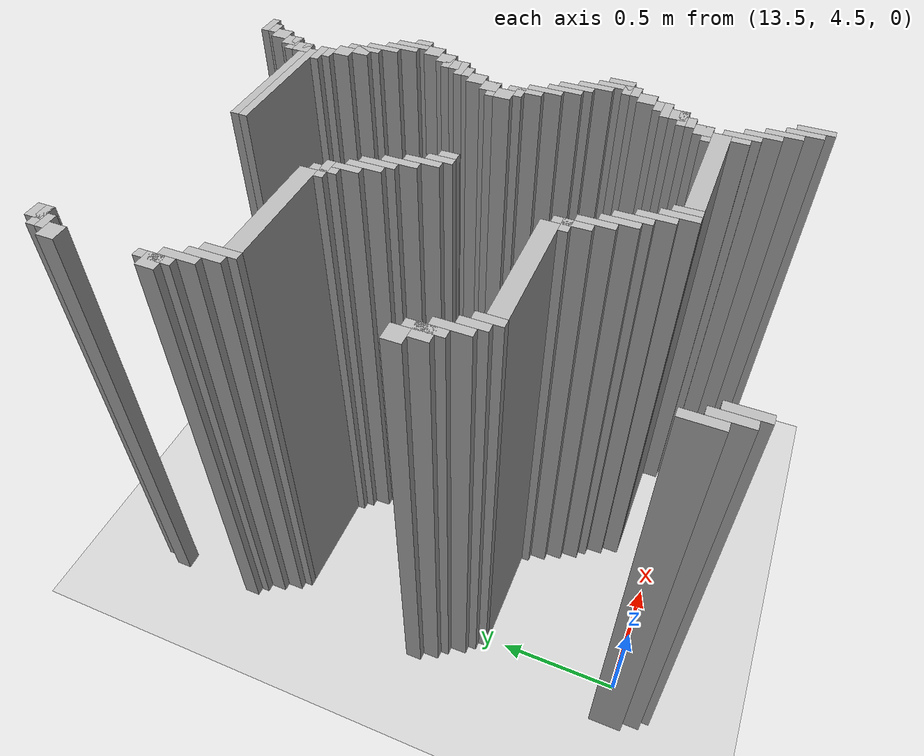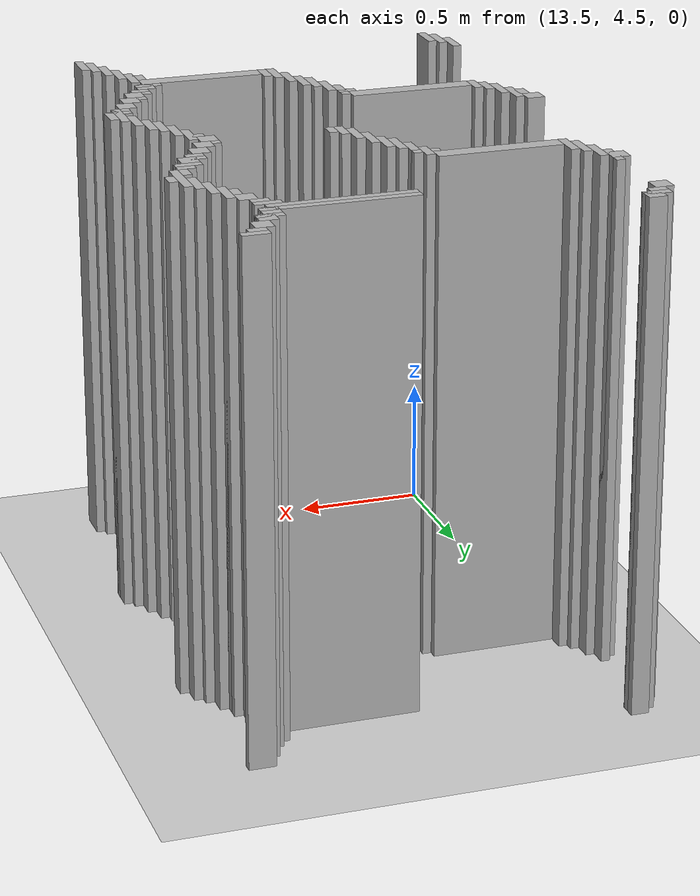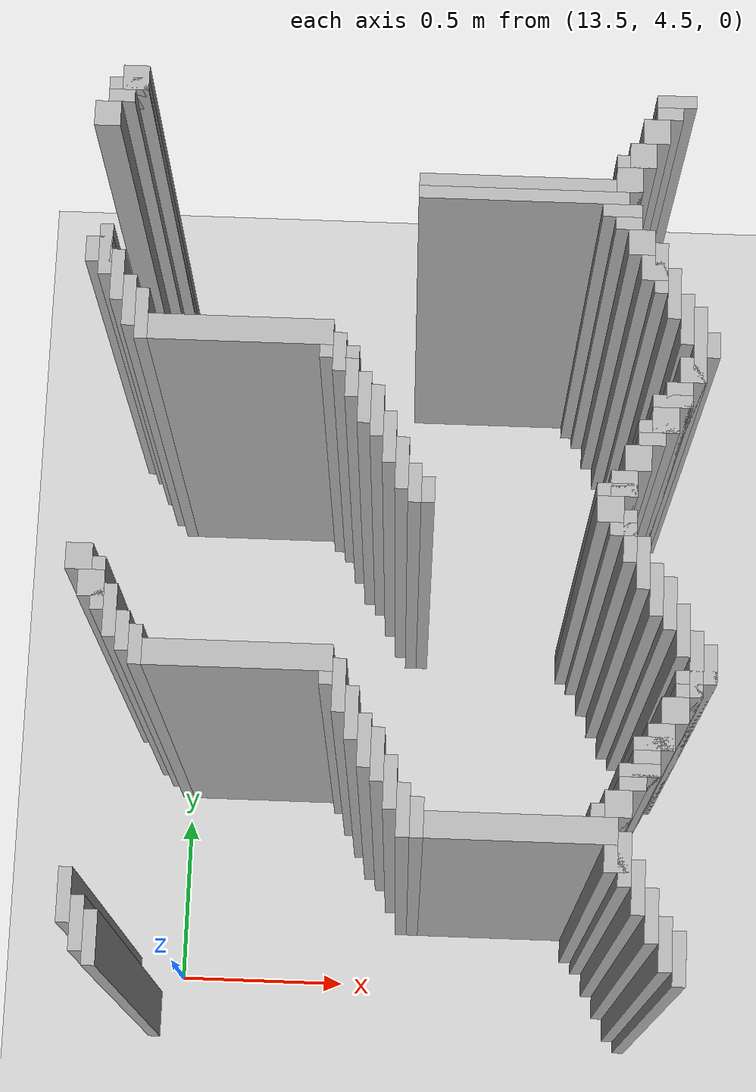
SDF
<sdf version="1.6">
 <world name="slam_world">
  <model name="ground_plane">
   <static>true</static>
   <link name="link">
    <collision name="collision">
     <geometry><plane><normal>0 0 1</normal><size>100 100</size></plane></geometry>
    </collision>
    <visual name="visual">
     <geometry><plane><normal>0 0 1</normal><size>100 100</size></plane></geometry>
     <material>
      <ambient>0.8 0.8 0.8 1</ambient>
      <diffuse>0.8 0.8 0.8 1</diffuse>
      <specular>0.8 0.8 0.8 1</specular>
     </material>
    </visual>
   </link>
  </model>
  <model name="wall_3590">
   <static>true</static>
   <pose>13.39907192575406 6.682134570765661 1.0 0 0 0</pose>
   <link name="link">
    <collision name="collision">
     <geometry><box><size>0.06960556844547564 0.06960556844547564 2.0</size></box></geometry>
    </collision>
    <visual name="visual">
     <geometry><box><size>0.06960556844547564 0.06960556844547564 2.0</size></box></geometry>
     <material><ambient>0.5 0.5 0.5 1</ambient><diffuse>0.7 0.7 0.7 1</diffuse></material>
    </visual>
   </link>
  </model>
  <model name="wall_3603">
   <static>true</static>
   <pose>13.38167053364269 6.664733178654292 1.0 0 0 0</pose>
   <link name="link">
    <collision name="collision">
     <geometry><box><size>0.10440835266821345 0.03480278422273782 2.0</size></box></geometry>
    </collision>
    <visual name="visual">
     <geometry><box><size>0.10440835266821345 0.03480278422273782 2.0</size></box></geometry>
     <material><ambient>0.5 0.5 0.5 1</ambient><diffuse>0.7 0.7 0.7 1</diffuse></material>
    </visual>
   </link>
  </model>
  <model name="wall_3604">
   <static>true</static>
   <pose>14.84338747099768 6.664733178654292 1.0 0 0 0</pose>
   <link name="link">
    <collision name="collision">
     <geometry><box><size>0.10440835266821345 0.03480278422273782 2.0</size></box></geometry>
    </collision>
    <visual name="visual">
     <geometry><box><size>0.10440835266821345 0.03480278422273782 2.0</size></box></geometry>
     <material><ambient>0.5 0.5 0.5 1</ambient><diffuse>0.7 0.7 0.7 1</diffuse></material>
    </visual>
   </link>
  </model>
  <model name="wall_3610">
   <static>true</static>
   <pose>13.364269141531322 6.629930394431554 1.0 0 0 0</pose>
   <link name="link">
    <collision name="collision">
     <geometry><box><size>0.06960556844547564 0.03480278422273782 2.0</size></box></geometry>
    </collision>
    <visual name="visual">
     <geometry><box><size>0.06960556844547564 0.03480278422273782 2.0</size></box></geometry>
     <material><ambient>0.5 0.5 0.5 1</ambient><diffuse>0.7 0.7 0.7 1</diffuse></material>
    </visual>
   </link>
  </model>
  <model name="wall_3611">
   <static>true</static>
   <pose>14.825986078886311 6.629930394431554 1.0 0 0 0</pose>
   <link name="link">
    <collision name="collision">
     <geometry><box><size>0.06960556844547564 0.03480278422273782 2.0</size></box></geometry>
    </collision>
    <visual name="visual">
     <geometry><box><size>0.06960556844547564 0.03480278422273782 2.0</size></box></geometry>
     <material><ambient>0.5 0.5 0.5 1</ambient><diffuse>0.7 0.7 0.7 1</diffuse></material>
    </visual>
   </link>
  </model>
  <model name="wall_3623">
   <static>true</static>
   <pose>13.329466357308585 6.577726218097448 1.0 0 0 0</pose>
   <link name="link">
    <collision name="collision">
     <geometry><box><size>0.06960556844547564 0.06960556844547564 2.0</size></box></geometry>
    </collision>
    <visual name="visual">
     <geometry><box><size>0.06960556844547564 0.06960556844547564 2.0</size></box></geometry>
     <material><ambient>0.5 0.5 0.5 1</ambient><diffuse>0.7 0.7 0.7 1</diffuse></material>
    </visual>
   </link>
  </model>
  <model name="wall_3624">
   <static>true</static>
   <pose>14.791183294663572 6.577726218097448 1.0 0 0 0</pose>
   <link name="link">
    <collision name="collision">
     <geometry><box><size>0.06960556844547564 0.06960556844547564 2.0</size></box></geometry>
    </collision>
    <visual name="visual">
     <geometry><box><size>0.06960556844547564 0.06960556844547564 2.0</size></box></geometry>
     <material><ambient>0.5 0.5 0.5 1</ambient><diffuse>0.7 0.7 0.7 1</diffuse></material>
    </visual>
   </link>
  </model>
  <model name="wall_3637">
   <static>true</static>
   <pose>14.756380510440835 6.508120649651972 1.0 0 0 0</pose>
   <link name="link">
    <collision name="collision">
     <geometry><box><size>0.06960556844547564 0.06960556844547564 2.0</size></box></geometry>
    </collision>
    <visual name="visual">
     <geometry><box><size>0.06960556844547564 0.06960556844547564 2.0</size></box></geometry>
     <material><ambient>0.5 0.5 0.5 1</ambient><diffuse>0.7 0.7 0.7 1</diffuse></material>
    </visual>
   </link>
  </model>
  <model name="wall_3650">
   <static>true</static>
   <pose>14.738979118329466 6.490719257540603 1.0 0 0 0</pose>
   <link name="link">
    <collision name="collision">
     <geometry><box><size>0.10440835266821345 0.03480278422273782 2.0</size></box></geometry>
    </collision>
    <visual name="visual">
     <geometry><box><size>0.10440835266821345 0.03480278422273782 2.0</size></box></geometry>
     <material><ambient>0.5 0.5 0.5 1</ambient><diffuse>0.7 0.7 0.7 1</diffuse></material>
    </visual>
   </link>
  </model>
  <model name="wall_3657">
   <static>true</static>
   <pose>14.721577726218097 6.438515081206496 1.0 0 0 0</pose>
   <link name="link">
    <collision name="collision">
     <geometry><box><size>0.06960556844547564 0.06960556844547564 2.0</size></box></geometry>
    </collision>
    <visual name="visual">
     <geometry><box><size>0.06960556844547564 0.06960556844547564 2.0</size></box></geometry>
     <material><ambient>0.5 0.5 0.5 1</ambient><diffuse>0.7 0.7 0.7 1</diffuse></material>
    </visual>
   </link>
  </model>
  <model name="wall_3670">
   <static>true</static>
   <pose>14.460556844547563 6.421113689095128 1.0 0 0 0</pose>
   <link name="link">
    <collision name="collision">
     <geometry><box><size>0.5916473317865429 0.03480278422273782 2.0</size></box></geometry>
    </collision>
    <visual name="visual">
     <geometry><box><size>0.5916473317865429 0.03480278422273782 2.0</size></box></geometry>
     <material><ambient>0.5 0.5 0.5 1</ambient><diffuse>0.7 0.7 0.7 1</diffuse></material>
    </visual>
   </link>
  </model>
  <model name="wall_3677">
   <static>true</static>
   <pose>14.443155452436194 6.386310904872389 1.0 0 0 0</pose>
   <link name="link">
    <collision name="collision">
     <geometry><box><size>0.5568445475638051 0.03480278422273782 2.0</size></box></geometry>
    </collision>
    <visual name="visual">
     <geometry><box><size>0.5568445475638051 0.03480278422273782 2.0</size></box></geometry>
     <material><ambient>0.5 0.5 0.5 1</ambient><diffuse>0.7 0.7 0.7 1</diffuse></material>
    </visual>
   </link>
  </model>
  <model name="wall_3690">
   <static>true</static>
   <pose>14.704176334106728 6.351508120649652 1.0 0 0 0</pose>
   <link name="link">
    <collision name="collision">
     <geometry><box><size>0.10440835266821345 0.03480278422273782 2.0</size></box></geometry>
    </collision>
    <visual name="visual">
     <geometry><box><size>0.10440835266821345 0.03480278422273782 2.0</size></box></geometry>
     <material><ambient>0.5 0.5 0.5 1</ambient><diffuse>0.7 0.7 0.7 1</diffuse></material>
    </visual>
   </link>
  </model>
  <model name="wall_3700">
   <static>true</static>
   <pose>14.721577726218097 6.316705336426914 1.0 0 0 0</pose>
   <link name="link">
    <collision name="collision">
     <geometry><box><size>0.06960556844547564 0.03480278422273782 2.0</size></box></geometry>
    </collision>
    <visual name="visual">
     <geometry><box><size>0.06960556844547564 0.03480278422273782 2.0</size></box></geometry>
     <material><ambient>0.5 0.5 0.5 1</ambient><diffuse>0.7 0.7 0.7 1</diffuse></material>
    </visual>
   </link>
  </model>
  <model name="wall_3713">
   <static>true</static>
   <pose>14.756380510440835 6.2645011600928076 1.0 0 0 0</pose>
   <link name="link">
    <collision name="collision">
     <geometry><box><size>0.06960556844547564 0.06960556844547564 2.0</size></box></geometry>
    </collision>
    <visual name="visual">
     <geometry><box><size>0.06960556844547564 0.06960556844547564 2.0</size></box></geometry>
     <material><ambient>0.5 0.5 0.5 1</ambient><diffuse>0.7 0.7 0.7 1</diffuse></material>
    </visual>
   </link>
  </model>
  <model name="wall_3725">
   <static>true</static>
   <pose>13.346867749419953 6.194895591647332 1.0 0 0 0</pose>
   <link name="link">
    <collision name="collision">
     <geometry><box><size>0.03480278422273782 0.13921113689095127 2.0</size></box></geometry>
    </collision>
    <visual name="visual">
     <geometry><box><size>0.03480278422273782 0.13921113689095127 2.0</size></box></geometry>
     <material><ambient>0.5 0.5 0.5 1</ambient><diffuse>0.7 0.7 0.7 1</diffuse></material>
    </visual>
   </link>
  </model>
  <model name="wall_3726">
   <static>true</static>
   <pose>14.80858468677494 6.194895591647332 1.0 0 0 0</pose>
   <link name="link">
    <collision name="collision">
     <geometry><box><size>0.03480278422273782 0.13921113689095127 2.0</size></box></geometry>
    </collision>
    <visual name="visual">
     <geometry><box><size>0.03480278422273782 0.13921113689095127 2.0</size></box></geometry>
     <material><ambient>0.5 0.5 0.5 1</ambient><diffuse>0.7 0.7 0.7 1</diffuse></material>
    </visual>
   </link>
  </model>
  <model name="wall_3738">
   <static>true</static>
   <pose>13.329466357308585 6.194895591647332 1.0 0 0 0</pose>
   <link name="link">
    <collision name="collision">
     <geometry><box><size>0.06960556844547564 0.06960556844547564 2.0</size></box></geometry>
    </collision>
    <visual name="visual">
     <geometry><box><size>0.06960556844547564 0.06960556844547564 2.0</size></box></geometry>
     <material><ambient>0.5 0.5 0.5 1</ambient><diffuse>0.7 0.7 0.7 1</diffuse></material>
    </visual>
   </link>
  </model>
  <model name="wall_3739">
   <static>true</static>
   <pose>14.791183294663572 6.194895591647332 1.0 0 0 0</pose>
   <link name="link">
    <collision name="collision">
     <geometry><box><size>0.06960556844547564 0.06960556844547564 2.0</size></box></geometry>
    </collision>
    <visual name="visual">
     <geometry><box><size>0.06960556844547564 0.06960556844547564 2.0</size></box></geometry>
     <material><ambient>0.5 0.5 0.5 1</ambient><diffuse>0.7 0.7 0.7 1</diffuse></material>
    </visual>
   </link>
  </model>
  <model name="wall_3751">
   <static>true</static>
   <pose>13.38167053364269 6.125290023201856 1.0 0 0 0</pose>
   <link name="link">
    <collision name="collision">
     <geometry><box><size>0.03480278422273782 0.13921113689095127 2.0</size></box></geometry>
    </collision>
    <visual name="visual">
     <geometry><box><size>0.03480278422273782 0.13921113689095127 2.0</size></box></geometry>
     <material><ambient>0.5 0.5 0.5 1</ambient><diffuse>0.7 0.7 0.7 1</diffuse></material>
    </visual>
   </link>
  </model>
  <model name="wall_3752">
   <static>true</static>
   <pose>14.84338747099768 6.125290023201856 1.0 0 0 0</pose>
   <link name="link">
    <collision name="collision">
     <geometry><box><size>0.03480278422273782 0.13921113689095127 2.0</size></box></geometry>
    </collision>
    <visual name="visual">
     <geometry><box><size>0.03480278422273782 0.13921113689095127 2.0</size></box></geometry>
     <material><ambient>0.5 0.5 0.5 1</ambient><diffuse>0.7 0.7 0.7 1</diffuse></material>
    </visual>
   </link>
  </model>
  <model name="wall_3768">
   <static>true</static>
   <pose>13.416473317865428 6.05568445475638 1.0 0 0 0</pose>
   <link name="link">
    <collision name="collision">
     <geometry><box><size>0.03480278422273782 0.13921113689095127 2.0</size></box></geometry>
    </collision>
    <visual name="visual">
     <geometry><box><size>0.03480278422273782 0.13921113689095127 2.0</size></box></geometry>
     <material><ambient>0.5 0.5 0.5 1</ambient><diffuse>0.7 0.7 0.7 1</diffuse></material>
    </visual>
   </link>
  </model>
  <model name="wall_3769">
   <static>true</static>
   <pose>14.878190255220417 6.05568445475638 1.0 0 0 0</pose>
   <link name="link">
    <collision name="collision">
     <geometry><box><size>0.03480278422273782 0.13921113689095127 2.0</size></box></geometry>
    </collision>
    <visual name="visual">
     <geometry><box><size>0.03480278422273782 0.13921113689095127 2.0</size></box></geometry>
     <material><ambient>0.5 0.5 0.5 1</ambient><diffuse>0.7 0.7 0.7 1</diffuse></material>
    </visual>
   </link>
  </model>
  <model name="wall_3781">
   <static>true</static>
   <pose>13.451276102088167 6.020881670533642 1.0 0 0 0</pose>
   <link name="link">
    <collision name="collision">
     <geometry><box><size>0.03480278422273782 0.13921113689095127 2.0</size></box></geometry>
    </collision>
    <visual name="visual">
     <geometry><box><size>0.03480278422273782 0.13921113689095127 2.0</size></box></geometry>
     <material><ambient>0.5 0.5 0.5 1</ambient><diffuse>0.7 0.7 0.7 1</diffuse></material>
    </visual>
   </link>
  </model>
  <model name="wall_3782">
   <static>true</static>
   <pose>14.912993039443155 5.986078886310905 1.0 0 0 0</pose>
   <link name="link">
    <collision name="collision">
     <geometry><box><size>0.03480278422273782 0.2088167053364269 2.0</size></box></geometry>
    </collision>
    <visual name="visual">
     <geometry><box><size>0.03480278422273782 0.2088167053364269 2.0</size></box></geometry>
     <material><ambient>0.5 0.5 0.5 1</ambient><diffuse>0.7 0.7 0.7 1</diffuse></material>
    </visual>
   </link>
  </model>
  <model name="wall_3797">
   <static>true</static>
   <pose>13.7122969837587 5.986078886310905 1.0 0 0 0</pose>
   <link name="link">
    <collision name="collision">
     <geometry><box><size>0.4872389791183295 0.06960556844547564 2.0</size></box></geometry>
    </collision>
    <visual name="visual">
     <geometry><box><size>0.4872389791183295 0.06960556844547564 2.0</size></box></geometry>
     <material><ambient>0.5 0.5 0.5 1</ambient><diffuse>0.7 0.7 0.7 1</diffuse></material>
    </visual>
   </link>
  </model>
  <model name="wall_3798">
   <static>true</static>
   <pose>14.947795823665892 5.986078886310905 1.0 0 0 0</pose>
   <link name="link">
    <collision name="collision">
     <geometry><box><size>0.03480278422273782 0.06960556844547564 2.0</size></box></geometry>
    </collision>
    <visual name="visual">
     <geometry><box><size>0.03480278422273782 0.06960556844547564 2.0</size></box></geometry>
     <material><ambient>0.5 0.5 0.5 1</ambient><diffuse>0.7 0.7 0.7 1</diffuse></material>
    </visual>
   </link>
  </model>
  <model name="wall_3808">
   <static>true</static>
   <pose>13.973317865429234 5.933874709976798 1.0 0 0 0</pose>
   <link name="link">
    <collision name="collision">
     <geometry><box><size>0.03480278422273782 0.10440835266821345 2.0</size></box></geometry>
    </collision>
    <visual name="visual">
     <geometry><box><size>0.03480278422273782 0.10440835266821345 2.0</size></box></geometry>
     <material><ambient>0.5 0.5 0.5 1</ambient><diffuse>0.7 0.7 0.7 1</diffuse></material>
    </visual>
   </link>
  </model>
  <model name="wall_3823">
   <static>true</static>
   <pose>13.973317865429234 5.933874709976798 1.0 0 0 0</pose>
   <link name="link">
    <collision name="collision">
     <geometry><box><size>0.10440835266821345 0.03480278422273782 2.0</size></box></geometry>
    </collision>
    <visual name="visual">
     <geometry><box><size>0.10440835266821345 0.03480278422273782 2.0</size></box></geometry>
     <material><ambient>0.5 0.5 0.5 1</ambient><diffuse>0.7 0.7 0.7 1</diffuse></material>
    </visual>
   </link>
  </model>
  <model name="wall_3824">
   <static>true</static>
   <pose>14.895591647331786 5.916473317865429 1.0 0 0 0</pose>
   <link name="link">
    <collision name="collision">
     <geometry><box><size>0.06960556844547564 0.06960556844547564 2.0</size></box></geometry>
    </collision>
    <visual name="visual">
     <geometry><box><size>0.06960556844547564 0.06960556844547564 2.0</size></box></geometry>
     <material><ambient>0.5 0.5 0.5 1</ambient><diffuse>0.7 0.7 0.7 1</diffuse></material>
    </visual>
   </link>
  </model>
  <model name="wall_3837">
   <static>true</static>
   <pose>14.008120649651971 5.864269141531322 1.0 0 0 0</pose>
   <link name="link">
    <collision name="collision">
     <geometry><box><size>0.03480278422273782 0.10440835266821345 2.0</size></box></geometry>
    </collision>
    <visual name="visual">
     <geometry><box><size>0.03480278422273782 0.10440835266821345 2.0</size></box></geometry>
     <material><ambient>0.5 0.5 0.5 1</ambient><diffuse>0.7 0.7 0.7 1</diffuse></material>
    </visual>
   </link>
  </model>
  <model name="wall_3852">
   <static>true</static>
   <pose>14.042923433874709 5.812064965197216 1.0 0 0 0</pose>
   <link name="link">
    <collision name="collision">
     <geometry><box><size>0.03480278422273782 0.13921113689095127 2.0</size></box></geometry>
    </collision>
    <visual name="visual">
     <geometry><box><size>0.03480278422273782 0.13921113689095127 2.0</size></box></geometry>
     <material><ambient>0.5 0.5 0.5 1</ambient><diffuse>0.7 0.7 0.7 1</diffuse></material>
    </visual>
   </link>
  </model>
  <model name="wall_3853">
   <static>true</static>
   <pose>14.860788863109049 5.846867749419953 1.0 0 0 0</pose>
   <link name="link">
    <collision name="collision">
     <geometry><box><size>0.06960556844547564 0.06960556844547564 2.0</size></box></geometry>
    </collision>
    <visual name="visual">
     <geometry><box><size>0.06960556844547564 0.06960556844547564 2.0</size></box></geometry>
     <material><ambient>0.5 0.5 0.5 1</ambient><diffuse>0.7 0.7 0.7 1</diffuse></material>
    </visual>
   </link>
  </model>
  <model name="wall_3868">
   <static>true</static>
   <pose>14.077726218097448 5.7772621809744775 1.0 0 0 0</pose>
   <link name="link">
    <collision name="collision">
     <geometry><box><size>0.03480278422273782 0.13921113689095127 2.0</size></box></geometry>
    </collision>
    <visual name="visual">
     <geometry><box><size>0.03480278422273782 0.13921113689095127 2.0</size></box></geometry>
     <material><ambient>0.5 0.5 0.5 1</ambient><diffuse>0.7 0.7 0.7 1</diffuse></material>
    </visual>
   </link>
  </model>
  <model name="wall_3869">
   <static>true</static>
   <pose>14.84338747099768 5.8294663573085845 1.0 0 0 0</pose>
   <link name="link">
    <collision name="collision">
     <geometry><box><size>0.10440835266821345 0.03480278422273782 2.0</size></box></geometry>
    </collision>
    <visual name="visual">
     <geometry><box><size>0.10440835266821345 0.03480278422273782 2.0</size></box></geometry>
     <material><ambient>0.5 0.5 0.5 1</ambient><diffuse>0.7 0.7 0.7 1</diffuse></material>
    </visual>
   </link>
  </model>
  <model name="wall_3882">
   <static>true</static>
   <pose>14.825986078886311 5.7772621809744775 1.0 0 0 0</pose>
   <link name="link">
    <collision name="collision">
     <geometry><box><size>0.06960556844547564 0.06960556844547564 2.0</size></box></geometry>
    </collision>
    <visual name="visual">
     <geometry><box><size>0.06960556844547564 0.06960556844547564 2.0</size></box></geometry>
     <material><ambient>0.5 0.5 0.5 1</ambient><diffuse>0.7 0.7 0.7 1</diffuse></material>
    </visual>
   </link>
  </model>
  <model name="wall_3897">
   <static>true</static>
   <pose>14.112529002320185 5.707656612529002 1.0 0 0 0</pose>
   <link name="link">
    <collision name="collision">
     <geometry><box><size>0.03480278422273782 0.13921113689095127 2.0</size></box></geometry>
    </collision>
    <visual name="visual">
     <geometry><box><size>0.03480278422273782 0.13921113689095127 2.0</size></box></geometry>
     <material><ambient>0.5 0.5 0.5 1</ambient><diffuse>0.7 0.7 0.7 1</diffuse></material>
    </visual>
   </link>
  </model>
  <model name="wall_3898">
   <static>true</static>
   <pose>14.80858468677494 5.759860788863109 1.0 0 0 0</pose>
   <link name="link">
    <collision name="collision">
     <geometry><box><size>0.10440835266821345 0.03480278422273782 2.0</size></box></geometry>
    </collision>
    <visual name="visual">
     <geometry><box><size>0.10440835266821345 0.03480278422273782 2.0</size></box></geometry>
     <material><ambient>0.5 0.5 0.5 1</ambient><diffuse>0.7 0.7 0.7 1</diffuse></material>
    </visual>
   </link>
  </model>
  <model name="wall_3906">
   <static>true</static>
   <pose>14.791183294663572 5.725058004640371 1.0 0 0 0</pose>
   <link name="link">
    <collision name="collision">
     <geometry><box><size>0.06960556844547564 0.03480278422273782 2.0</size></box></geometry>
    </collision>
    <visual name="visual">
     <geometry><box><size>0.06960556844547564 0.03480278422273782 2.0</size></box></geometry>
     <material><ambient>0.5 0.5 0.5 1</ambient><diffuse>0.7 0.7 0.7 1</diffuse></material>
    </visual>
   </link>
  </model>
  <model name="wall_3921">
   <static>true</static>
   <pose>14.147331786542923 5.638051044083526 1.0 0 0 0</pose>
   <link name="link">
    <collision name="collision">
     <geometry><box><size>0.03480278422273782 0.13921113689095127 2.0</size></box></geometry>
    </collision>
    <visual name="visual">
     <geometry><box><size>0.03480278422273782 0.13921113689095127 2.0</size></box></geometry>
     <material><ambient>0.5 0.5 0.5 1</ambient><diffuse>0.7 0.7 0.7 1</diffuse></material>
    </visual>
   </link>
  </model>
  <model name="wall_3922">
   <static>true</static>
   <pose>14.756380510440835 5.672853828306264 1.0 0 0 0</pose>
   <link name="link">
    <collision name="collision">
     <geometry><box><size>0.06960556844547564 0.06960556844547564 2.0</size></box></geometry>
    </collision>
    <visual name="visual">
     <geometry><box><size>0.06960556844547564 0.06960556844547564 2.0</size></box></geometry>
     <material><ambient>0.5 0.5 0.5 1</ambient><diffuse>0.7 0.7 0.7 1</diffuse></material>
    </visual>
   </link>
  </model>
  <model name="wall_3937">
   <static>true</static>
   <pose>14.18213457076566 5.58584686774942 1.0 0 0 0</pose>
   <link name="link">
    <collision name="collision">
     <geometry><box><size>0.03480278422273782 0.10440835266821345 2.0</size></box></geometry>
    </collision>
    <visual name="visual">
     <geometry><box><size>0.03480278422273782 0.10440835266821345 2.0</size></box></geometry>
     <material><ambient>0.5 0.5 0.5 1</ambient><diffuse>0.7 0.7 0.7 1</diffuse></material>
    </visual>
   </link>
  </model>
  <model name="wall_3938">
   <static>true</static>
   <pose>14.721577726218097 5.603248259860789 1.0 0 0 0</pose>
   <link name="link">
    <collision name="collision">
     <geometry><box><size>0.06960556844547564 0.06960556844547564 2.0</size></box></geometry>
    </collision>
    <visual name="visual">
     <geometry><box><size>0.06960556844547564 0.06960556844547564 2.0</size></box></geometry>
     <material><ambient>0.5 0.5 0.5 1</ambient><diffuse>0.7 0.7 0.7 1</diffuse></material>
    </visual>
   </link>
  </model>
  <model name="wall_3953">
   <static>true</static>
   <pose>14.2169373549884 5.56844547563805 1.0 0 0 0</pose>
   <link name="link">
    <collision name="collision">
     <geometry><box><size>0.03480278422273782 0.06960556844547564 2.0</size></box></geometry>
    </collision>
    <visual name="visual">
     <geometry><box><size>0.03480278422273782 0.06960556844547564 2.0</size></box></geometry>
     <material><ambient>0.5 0.5 0.5 1</ambient><diffuse>0.7 0.7 0.7 1</diffuse></material>
    </visual>
   </link>
  </model>
  <model name="wall_3954">
   <static>true</static>
   <pose>14.704176334106728 5.58584686774942 1.0 0 0 0</pose>
   <link name="link">
    <collision name="collision">
     <geometry><box><size>0.10440835266821345 0.03480278422273782 2.0</size></box></geometry>
    </collision>
    <visual name="visual">
     <geometry><box><size>0.10440835266821345 0.03480278422273782 2.0</size></box></geometry>
     <material><ambient>0.5 0.5 0.5 1</ambient><diffuse>0.7 0.7 0.7 1</diffuse></material>
    </visual>
   </link>
  </model>
  <model name="wall_3966">
   <static>true</static>
   <pose>14.68677494199536 5.533642691415313 1.0 0 0 0</pose>
   <link name="link">
    <collision name="collision">
     <geometry><box><size>0.06960556844547564 0.06960556844547564 2.0</size></box></geometry>
    </collision>
    <visual name="visual">
     <geometry><box><size>0.06960556844547564 0.06960556844547564 2.0</size></box></geometry>
     <material><ambient>0.5 0.5 0.5 1</ambient><diffuse>0.7 0.7 0.7 1</diffuse></material>
    </visual>
   </link>
  </model>
  <model name="wall_3983">
   <static>true</static>
   <pose>14.738979118329466 5.464037122969837 1.0 0 0 0</pose>
   <link name="link">
    <collision name="collision">
     <geometry><box><size>0.03480278422273782 0.13921113689095127 2.0</size></box></geometry>
    </collision>
    <visual name="visual">
     <geometry><box><size>0.03480278422273782 0.13921113689095127 2.0</size></box></geometry>
     <material><ambient>0.5 0.5 0.5 1</ambient><diffuse>0.7 0.7 0.7 1</diffuse></material>
    </visual>
   </link>
  </model>
  <model name="wall_3996">
   <static>true</static>
   <pose>14.721577726218097 5.481438515081206 1.0 0 0 0</pose>
   <link name="link">
    <collision name="collision">
     <geometry><box><size>0.06960556844547564 0.03480278422273782 2.0</size></box></geometry>
    </collision>
    <visual name="visual">
     <geometry><box><size>0.06960556844547564 0.03480278422273782 2.0</size></box></geometry>
     <material><ambient>0.5 0.5 0.5 1</ambient><diffuse>0.7 0.7 0.7 1</diffuse></material>
    </visual>
   </link>
  </model>
  <model name="wall_4009">
   <static>true</static>
   <pose>14.773781902552203 5.3944315545243615 1.0 0 0 0</pose>
   <link name="link">
    <collision name="collision">
     <geometry><box><size>0.03480278422273782 0.13921113689095127 2.0</size></box></geometry>
    </collision>
    <visual name="visual">
     <geometry><box><size>0.03480278422273782 0.13921113689095127 2.0</size></box></geometry>
     <material><ambient>0.5 0.5 0.5 1</ambient><diffuse>0.7 0.7 0.7 1</diffuse></material>
    </visual>
   </link>
  </model>
  <model name="wall_4021">
   <static>true</static>
   <pose>13.329466357308585 5.359628770301624 1.0 0 0 0</pose>
   <link name="link">
    <collision name="collision">
     <geometry><box><size>0.06960556844547564 0.06960556844547564 2.0</size></box></geometry>
    </collision>
    <visual name="visual">
     <geometry><box><size>0.06960556844547564 0.06960556844547564 2.0</size></box></geometry>
     <material><ambient>0.5 0.5 0.5 1</ambient><diffuse>0.7 0.7 0.7 1</diffuse></material>
    </visual>
   </link>
  </model>
  <model name="wall_4022">
   <static>true</static>
   <pose>14.80858468677494 5.324825986078886 1.0 0 0 0</pose>
   <link name="link">
    <collision name="collision">
     <geometry><box><size>0.03480278422273782 0.13921113689095127 2.0</size></box></geometry>
    </collision>
    <visual name="visual">
     <geometry><box><size>0.03480278422273782 0.13921113689095127 2.0</size></box></geometry>
     <material><ambient>0.5 0.5 0.5 1</ambient><diffuse>0.7 0.7 0.7 1</diffuse></material>
    </visual>
   </link>
  </model>
  <model name="wall_4034">
   <static>true</static>
   <pose>13.38167053364269 5.290023201856148 1.0 0 0 0</pose>
   <link name="link">
    <collision name="collision">
     <geometry><box><size>0.03480278422273782 0.13921113689095127 2.0</size></box></geometry>
    </collision>
    <visual name="visual">
     <geometry><box><size>0.03480278422273782 0.13921113689095127 2.0</size></box></geometry>
     <material><ambient>0.5 0.5 0.5 1</ambient><diffuse>0.7 0.7 0.7 1</diffuse></material>
    </visual>
   </link>
  </model>
  <model name="wall_4035">
   <static>true</static>
   <pose>14.84338747099768 5.290023201856148 1.0 0 0 0</pose>
   <link name="link">
    <collision name="collision">
     <geometry><box><size>0.03480278422273782 0.13921113689095127 2.0</size></box></geometry>
    </collision>
    <visual name="visual">
     <geometry><box><size>0.03480278422273782 0.13921113689095127 2.0</size></box></geometry>
     <material><ambient>0.5 0.5 0.5 1</ambient><diffuse>0.7 0.7 0.7 1</diffuse></material>
    </visual>
   </link>
  </model>
  <model name="wall_4042">
   <static>true</static>
   <pose>13.364269141531322 5.290023201856148 1.0 0 0 0</pose>
   <link name="link">
    <collision name="collision">
     <geometry><box><size>0.06960556844547564 0.06960556844547564 2.0</size></box></geometry>
    </collision>
    <visual name="visual">
     <geometry><box><size>0.06960556844547564 0.06960556844547564 2.0</size></box></geometry>
     <material><ambient>0.5 0.5 0.5 1</ambient><diffuse>0.7 0.7 0.7 1</diffuse></material>
    </visual>
   </link>
  </model>
  <model name="wall_4054">
   <static>true</static>
   <pose>13.416473317865428 5.220417633410673 1.0 0 0 0</pose>
   <link name="link">
    <collision name="collision">
     <geometry><box><size>0.03480278422273782 0.13921113689095127 2.0</size></box></geometry>
    </collision>
    <visual name="visual">
     <geometry><box><size>0.03480278422273782 0.13921113689095127 2.0</size></box></geometry>
     <material><ambient>0.5 0.5 0.5 1</ambient><diffuse>0.7 0.7 0.7 1</diffuse></material>
    </visual>
   </link>
  </model>
  <model name="wall_4055">
   <static>true</static>
   <pose>14.878190255220417 5.220417633410673 1.0 0 0 0</pose>
   <link name="link">
    <collision name="collision">
     <geometry><box><size>0.03480278422273782 0.13921113689095127 2.0</size></box></geometry>
    </collision>
    <visual name="visual">
     <geometry><box><size>0.03480278422273782 0.13921113689095127 2.0</size></box></geometry>
     <material><ambient>0.5 0.5 0.5 1</ambient><diffuse>0.7 0.7 0.7 1</diffuse></material>
    </visual>
   </link>
  </model>
  <model name="wall_4073">
   <static>true</static>
   <pose>13.451276102088167 5.168213457076566 1.0 0 0 0</pose>
   <link name="link">
    <collision name="collision">
     <geometry><box><size>0.03480278422273782 0.10440835266821345 2.0</size></box></geometry>
    </collision>
    <visual name="visual">
     <geometry><box><size>0.03480278422273782 0.10440835266821345 2.0</size></box></geometry>
     <material><ambient>0.5 0.5 0.5 1</ambient><diffuse>0.7 0.7 0.7 1</diffuse></material>
    </visual>
   </link>
  </model>
  <model name="wall_4074">
   <static>true</static>
   <pose>14.912993039443155 5.133410672853828 1.0 0 0 0</pose>
   <link name="link">
    <collision name="collision">
     <geometry><box><size>0.03480278422273782 0.17401392111368907 2.0</size></box></geometry>
    </collision>
    <visual name="visual">
     <geometry><box><size>0.03480278422273782 0.17401392111368907 2.0</size></box></geometry>
     <material><ambient>0.5 0.5 0.5 1</ambient><diffuse>0.7 0.7 0.7 1</diffuse></material>
    </visual>
   </link>
  </model>
  <model name="wall_4086">
   <static>true</static>
   <pose>13.486078886310905 5.133410672853828 1.0 0 0 0</pose>
   <link name="link">
    <collision name="collision">
     <geometry><box><size>0.03480278422273782 0.10440835266821345 2.0</size></box></geometry>
    </collision>
    <visual name="visual">
     <geometry><box><size>0.03480278422273782 0.10440835266821345 2.0</size></box></geometry>
     <material><ambient>0.5 0.5 0.5 1</ambient><diffuse>0.7 0.7 0.7 1</diffuse></material>
    </visual>
   </link>
  </model>
  <model name="wall_4087">
   <static>true</static>
   <pose>14.947795823665892 5.133410672853828 1.0 0 0 0</pose>
   <link name="link">
    <collision name="collision">
     <geometry><box><size>0.03480278422273782 0.10440835266821345 2.0</size></box></geometry>
    </collision>
    <visual name="visual">
     <geometry><box><size>0.03480278422273782 0.10440835266821345 2.0</size></box></geometry>
     <material><ambient>0.5 0.5 0.5 1</ambient><diffuse>0.7 0.7 0.7 1</diffuse></material>
    </visual>
   </link>
  </model>
  <model name="wall_4097">
   <static>true</static>
   <pose>13.747099767981437 5.1160092807424595 1.0 0 0 0</pose>
   <link name="link">
    <collision name="collision">
     <geometry><box><size>0.4872389791183295 0.06960556844547564 2.0</size></box></geometry>
    </collision>
    <visual name="visual">
     <geometry><box><size>0.4872389791183295 0.06960556844547564 2.0</size></box></geometry>
     <material><ambient>0.5 0.5 0.5 1</ambient><diffuse>0.7 0.7 0.7 1</diffuse></material>
    </visual>
   </link>
  </model>
  <model name="wall_4109">
   <static>true</static>
   <pose>14.008120649651971 5.046403712296984 1.0 0 0 0</pose>
   <link name="link">
    <collision name="collision">
     <geometry><box><size>0.03480278422273782 0.13921113689095127 2.0</size></box></geometry>
    </collision>
    <visual name="visual">
     <geometry><box><size>0.03480278422273782 0.13921113689095127 2.0</size></box></geometry>
     <material><ambient>0.5 0.5 0.5 1</ambient><diffuse>0.7 0.7 0.7 1</diffuse></material>
    </visual>
   </link>
  </model>
  <model name="wall_4110">
   <static>true</static>
   <pose>14.912993039443155 5.09860788863109 1.0 0 0 0</pose>
   <link name="link">
    <collision name="collision">
     <geometry><box><size>0.10440835266821345 0.03480278422273782 2.0</size></box></geometry>
    </collision>
    <visual name="visual">
     <geometry><box><size>0.10440835266821345 0.03480278422273782 2.0</size></box></geometry>
     <material><ambient>0.5 0.5 0.5 1</ambient><diffuse>0.7 0.7 0.7 1</diffuse></material>
    </visual>
   </link>
  </model>
  <model name="wall_4124">
   <static>true</static>
   <pose>13.990719257540603 5.0638051044083525 1.0 0 0 0</pose>
   <link name="link">
    <collision name="collision">
     <geometry><box><size>0.06960556844547564 0.03480278422273782 2.0</size></box></geometry>
    </collision>
    <visual name="visual">
     <geometry><box><size>0.06960556844547564 0.03480278422273782 2.0</size></box></geometry>
     <material><ambient>0.5 0.5 0.5 1</ambient><diffuse>0.7 0.7 0.7 1</diffuse></material>
    </visual>
   </link>
  </model>
  <model name="wall_4125">
   <static>true</static>
   <pose>14.895591647331786 5.0638051044083525 1.0 0 0 0</pose>
   <link name="link">
    <collision name="collision">
     <geometry><box><size>0.06960556844547564 0.03480278422273782 2.0</size></box></geometry>
    </collision>
    <visual name="visual">
     <geometry><box><size>0.06960556844547564 0.03480278422273782 2.0</size></box></geometry>
     <material><ambient>0.5 0.5 0.5 1</ambient><diffuse>0.7 0.7 0.7 1</diffuse></material>
    </visual>
   </link>
  </model>
  <model name="wall_4139">
   <static>true</static>
   <pose>14.042923433874709 4.976798143851508 1.0 0 0 0</pose>
   <link name="link">
    <collision name="collision">
     <geometry><box><size>0.03480278422273782 0.13921113689095127 2.0</size></box></geometry>
    </collision>
    <visual name="visual">
     <geometry><box><size>0.03480278422273782 0.13921113689095127 2.0</size></box></geometry>
     <material><ambient>0.5 0.5 0.5 1</ambient><diffuse>0.7 0.7 0.7 1</diffuse></material>
    </visual>
   </link>
  </model>
  <model name="wall_4140">
   <static>true</static>
   <pose>14.860788863109049 5.0116009280742455 1.0 0 0 0</pose>
   <link name="link">
    <collision name="collision">
     <geometry><box><size>0.06960556844547564 0.06960556844547564 2.0</size></box></geometry>
    </collision>
    <visual name="visual">
     <geometry><box><size>0.06960556844547564 0.06960556844547564 2.0</size></box></geometry>
     <material><ambient>0.5 0.5 0.5 1</ambient><diffuse>0.7 0.7 0.7 1</diffuse></material>
    </visual>
   </link>
  </model>
  <model name="wall_4154">
   <static>true</static>
   <pose>14.077726218097448 4.907192575406032 1.0 0 0 0</pose>
   <link name="link">
    <collision name="collision">
     <geometry><box><size>0.03480278422273782 0.13921113689095127 2.0</size></box></geometry>
    </collision>
    <visual name="visual">
     <geometry><box><size>0.03480278422273782 0.13921113689095127 2.0</size></box></geometry>
     <material><ambient>0.5 0.5 0.5 1</ambient><diffuse>0.7 0.7 0.7 1</diffuse></material>
    </visual>
   </link>
  </model>
  <model name="wall_4155">
   <static>true</static>
   <pose>14.825986078886311 4.94199535962877 1.0 0 0 0</pose>
   <link name="link">
    <collision name="collision">
     <geometry><box><size>0.06960556844547564 0.06960556844547564 2.0</size></box></geometry>
    </collision>
    <visual name="visual">
     <geometry><box><size>0.06960556844547564 0.06960556844547564 2.0</size></box></geometry>
     <material><ambient>0.5 0.5 0.5 1</ambient><diffuse>0.7 0.7 0.7 1</diffuse></material>
    </visual>
   </link>
  </model>
  <model name="wall_4169">
   <static>true</static>
   <pose>14.112529002320185 4.872389791183294 1.0 0 0 0</pose>
   <link name="link">
    <collision name="collision">
     <geometry><box><size>0.03480278422273782 0.13921113689095127 2.0</size></box></geometry>
    </collision>
    <visual name="visual">
     <geometry><box><size>0.03480278422273782 0.13921113689095127 2.0</size></box></geometry>
     <material><ambient>0.5 0.5 0.5 1</ambient><diffuse>0.7 0.7 0.7 1</diffuse></material>
    </visual>
   </link>
  </model>
  <model name="wall_4170">
   <static>true</static>
   <pose>14.80858468677494 4.924593967517401 1.0 0 0 0</pose>
   <link name="link">
    <collision name="collision">
     <geometry><box><size>0.10440835266821345 0.03480278422273782 2.0</size></box></geometry>
    </collision>
    <visual name="visual">
     <geometry><box><size>0.10440835266821345 0.03480278422273782 2.0</size></box></geometry>
     <material><ambient>0.5 0.5 0.5 1</ambient><diffuse>0.7 0.7 0.7 1</diffuse></material>
    </visual>
   </link>
  </model>
  <model name="wall_4180">
   <static>true</static>
   <pose>14.791183294663572 4.872389791183294 1.0 0 0 0</pose>
   <link name="link">
    <collision name="collision">
     <geometry><box><size>0.06960556844547564 0.06960556844547564 2.0</size></box></geometry>
    </collision>
    <visual name="visual">
     <geometry><box><size>0.06960556844547564 0.06960556844547564 2.0</size></box></geometry>
     <material><ambient>0.5 0.5 0.5 1</ambient><diffuse>0.7 0.7 0.7 1</diffuse></material>
    </visual>
   </link>
  </model>
  <model name="wall_4194">
   <static>true</static>
   <pose>14.147331786542923 4.802784222737819 1.0 0 0 0</pose>
   <link name="link">
    <collision name="collision">
     <geometry><box><size>0.03480278422273782 0.13921113689095127 2.0</size></box></geometry>
    </collision>
    <visual name="visual">
     <geometry><box><size>0.03480278422273782 0.13921113689095127 2.0</size></box></geometry>
     <material><ambient>0.5 0.5 0.5 1</ambient><diffuse>0.7 0.7 0.7 1</diffuse></material>
    </visual>
   </link>
  </model>
  <model name="wall_4195">
   <static>true</static>
   <pose>14.773781902552203 4.854988399071925 1.0 0 0 0</pose>
   <link name="link">
    <collision name="collision">
     <geometry><box><size>0.10440835266821345 0.03480278422273782 2.0</size></box></geometry>
    </collision>
    <visual name="visual">
     <geometry><box><size>0.10440835266821345 0.03480278422273782 2.0</size></box></geometry>
     <material><ambient>0.5 0.5 0.5 1</ambient><diffuse>0.7 0.7 0.7 1</diffuse></material>
    </visual>
   </link>
  </model>
  <model name="wall_4202">
   <static>true</static>
   <pose>14.756380510440835 4.820185614849188 1.0 0 0 0</pose>
   <link name="link">
    <collision name="collision">
     <geometry><box><size>0.06960556844547564 0.03480278422273782 2.0</size></box></geometry>
    </collision>
    <visual name="visual">
     <geometry><box><size>0.06960556844547564 0.03480278422273782 2.0</size></box></geometry>
     <material><ambient>0.5 0.5 0.5 1</ambient><diffuse>0.7 0.7 0.7 1</diffuse></material>
    </visual>
   </link>
  </model>
  <model name="wall_4216">
   <static>true</static>
   <pose>14.18213457076566 4.7331786542923435 1.0 0 0 0</pose>
   <link name="link">
    <collision name="collision">
     <geometry><box><size>0.03480278422273782 0.13921113689095127 2.0</size></box></geometry>
    </collision>
    <visual name="visual">
     <geometry><box><size>0.03480278422273782 0.13921113689095127 2.0</size></box></geometry>
     <material><ambient>0.5 0.5 0.5 1</ambient><diffuse>0.7 0.7 0.7 1</diffuse></material>
    </visual>
   </link>
  </model>
  <model name="wall_4217">
   <static>true</static>
   <pose>14.721577726218097 4.767981438515081 1.0 0 0 0</pose>
   <link name="link">
    <collision name="collision">
     <geometry><box><size>0.06960556844547564 0.06960556844547564 2.0</size></box></geometry>
    </collision>
    <visual name="visual">
     <geometry><box><size>0.06960556844547564 0.06960556844547564 2.0</size></box></geometry>
     <material><ambient>0.5 0.5 0.5 1</ambient><diffuse>0.7 0.7 0.7 1</diffuse></material>
    </visual>
   </link>
  </model>
  <model name="wall_4230">
   <static>true</static>
   <pose>14.2169373549884 4.715777262180974 1.0 0 0 0</pose>
   <link name="link">
    <collision name="collision">
     <geometry><box><size>0.03480278422273782 0.10440835266821345 2.0</size></box></geometry>
    </collision>
    <visual name="visual">
     <geometry><box><size>0.03480278422273782 0.10440835266821345 2.0</size></box></geometry>
     <material><ambient>0.5 0.5 0.5 1</ambient><diffuse>0.7 0.7 0.7 1</diffuse></material>
    </visual>
   </link>
  </model>
  <model name="wall_4231">
   <static>true</static>
   <pose>14.704176334106728 4.750580046403712 1.0 0 0 0</pose>
   <link name="link">
    <collision name="collision">
     <geometry><box><size>0.10440835266821345 0.03480278422273782 2.0</size></box></geometry>
    </collision>
    <visual name="visual">
     <geometry><box><size>0.10440835266821345 0.03480278422273782 2.0</size></box></geometry>
     <material><ambient>0.5 0.5 0.5 1</ambient><diffuse>0.7 0.7 0.7 1</diffuse></material>
    </visual>
   </link>
  </model>
  <model name="wall_4243">
   <static>true</static>
   <pose>14.477958236658932 4.698375870069605 1.0 0 0 0</pose>
   <link name="link">
    <collision name="collision">
     <geometry><box><size>0.4872389791183295 0.06960556844547564 2.0</size></box></geometry>
    </collision>
    <visual name="visual">
     <geometry><box><size>0.4872389791183295 0.06960556844547564 2.0</size></box></geometry>
     <material><ambient>0.5 0.5 0.5 1</ambient><diffuse>0.7 0.7 0.7 1</diffuse></material>
    </visual>
   </link>
  </model>
  <model name="wall_4253">
   <static>true</static>
   <pose>14.738979118329466 4.6287703016241295 1.0 0 0 0</pose>
   <link name="link">
    <collision name="collision">
     <geometry><box><size>0.03480278422273782 0.13921113689095127 2.0</size></box></geometry>
    </collision>
    <visual name="visual">
     <geometry><box><size>0.03480278422273782 0.13921113689095127 2.0</size></box></geometry>
     <material><ambient>0.5 0.5 0.5 1</ambient><diffuse>0.7 0.7 0.7 1</diffuse></material>
    </visual>
   </link>
  </model>
  <model name="wall_4264">
   <static>true</static>
   <pose>14.721577726218097 4.6287703016241295 1.0 0 0 0</pose>
   <link name="link">
    <collision name="collision">
     <geometry><box><size>0.06960556844547564 0.06960556844547564 2.0</size></box></geometry>
    </collision>
    <visual name="visual">
     <geometry><box><size>0.06960556844547564 0.06960556844547564 2.0</size></box></geometry>
     <material><ambient>0.5 0.5 0.5 1</ambient><diffuse>0.7 0.7 0.7 1</diffuse></material>
    </visual>
   </link>
  </model>
  <model name="wall_4275">
   <static>true</static>
   <pose>14.773781902552203 4.559164733178654 1.0 0 0 0</pose>
   <link name="link">
    <collision name="collision">
     <geometry><box><size>0.03480278422273782 0.13921113689095127 2.0</size></box></geometry>
    </collision>
    <visual name="visual">
     <geometry><box><size>0.03480278422273782 0.13921113689095127 2.0</size></box></geometry>
     <material><ambient>0.5 0.5 0.5 1</ambient><diffuse>0.7 0.7 0.7 1</diffuse></material>
    </visual>
   </link>
  </model>
  <model name="wall_4290">
   <static>true</static>
   <pose>13.346867749419953 4.489559164733178 1.0 0 0 0</pose>
   <link name="link">
    <collision name="collision">
     <geometry><box><size>0.03480278422273782 0.13921113689095127 2.0</size></box></geometry>
    </collision>
    <visual name="visual">
     <geometry><box><size>0.03480278422273782 0.13921113689095127 2.0</size></box></geometry>
     <material><ambient>0.5 0.5 0.5 1</ambient><diffuse>0.7 0.7 0.7 1</diffuse></material>
    </visual>
   </link>
  </model>
  <model name="wall_4291">
   <static>true</static>
   <pose>14.80858468677494 4.489559164733178 1.0 0 0 0</pose>
   <link name="link">
    <collision name="collision">
     <geometry><box><size>0.03480278422273782 0.13921113689095127 2.0</size></box></geometry>
    </collision>
    <visual name="visual">
     <geometry><box><size>0.03480278422273782 0.13921113689095127 2.0</size></box></geometry>
     <material><ambient>0.5 0.5 0.5 1</ambient><diffuse>0.7 0.7 0.7 1</diffuse></material>
    </visual>
   </link>
  </model>
  <model name="wall_4301">
   <static>true</static>
   <pose>13.38167053364269 4.419953596287703 1.0 0 0 0</pose>
   <link name="link">
    <collision name="collision">
     <geometry><box><size>0.03480278422273782 0.13921113689095127 2.0</size></box></geometry>
    </collision>
    <visual name="visual">
     <geometry><box><size>0.03480278422273782 0.13921113689095127 2.0</size></box></geometry>
     <material><ambient>0.5 0.5 0.5 1</ambient><diffuse>0.7 0.7 0.7 1</diffuse></material>
    </visual>
   </link>
  </model>
  <model name="wall_4302">
   <static>true</static>
   <pose>14.84338747099768 4.419953596287703 1.0 0 0 0</pose>
   <link name="link">
    <collision name="collision">
     <geometry><box><size>0.03480278422273782 0.13921113689095127 2.0</size></box></geometry>
    </collision>
    <visual name="visual">
     <geometry><box><size>0.03480278422273782 0.13921113689095127 2.0</size></box></geometry>
     <material><ambient>0.5 0.5 0.5 1</ambient><diffuse>0.7 0.7 0.7 1</diffuse></material>
    </visual>
   </link>
  </model>
  <model name="wall_4312">
   <static>true</static>
   <pose>13.416473317865428 4.385150812064965 1.0 0 0 0</pose>
   <link name="link">
    <collision name="collision">
     <geometry><box><size>0.03480278422273782 0.13921113689095127 2.0</size></box></geometry>
    </collision>
    <visual name="visual">
     <geometry><box><size>0.03480278422273782 0.13921113689095127 2.0</size></box></geometry>
     <material><ambient>0.5 0.5 0.5 1</ambient><diffuse>0.7 0.7 0.7 1</diffuse></material>
    </visual>
   </link>
  </model>
  <model name="wall_4313">
   <static>true</static>
   <pose>14.878190255220417 4.385150812064965 1.0 0 0 0</pose>
   <link name="link">
    <collision name="collision">
     <geometry><box><size>0.03480278422273782 0.13921113689095127 2.0</size></box></geometry>
    </collision>
    <visual name="visual">
     <geometry><box><size>0.03480278422273782 0.13921113689095127 2.0</size></box></geometry>
     <material><ambient>0.5 0.5 0.5 1</ambient><diffuse>0.7 0.7 0.7 1</diffuse></material>
    </visual>
   </link>
  </model>
 </world>
</sdf>
